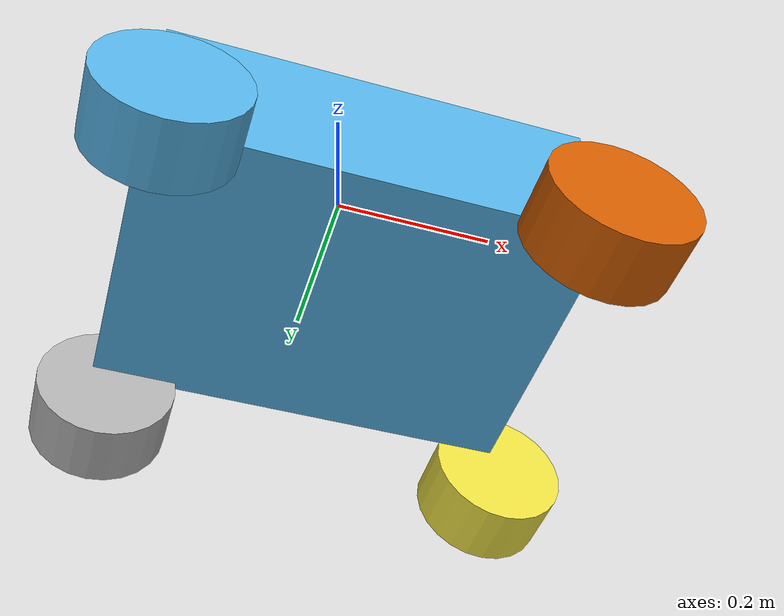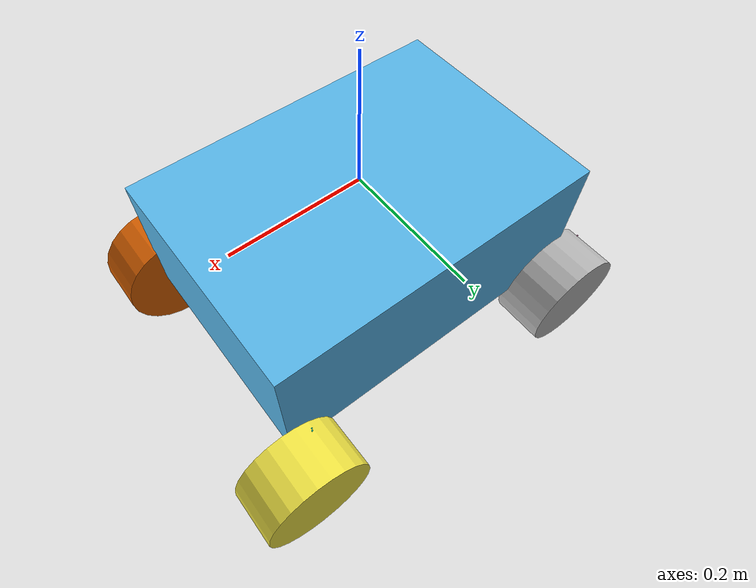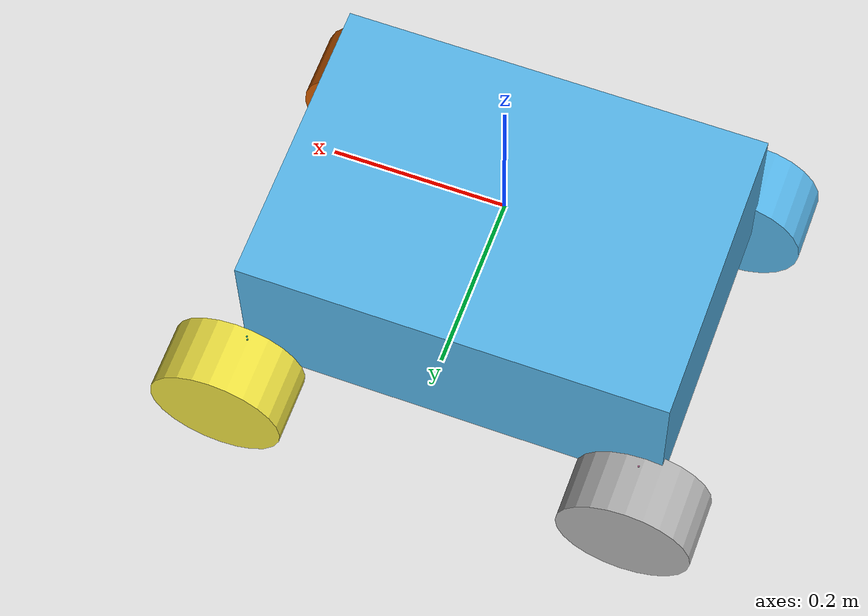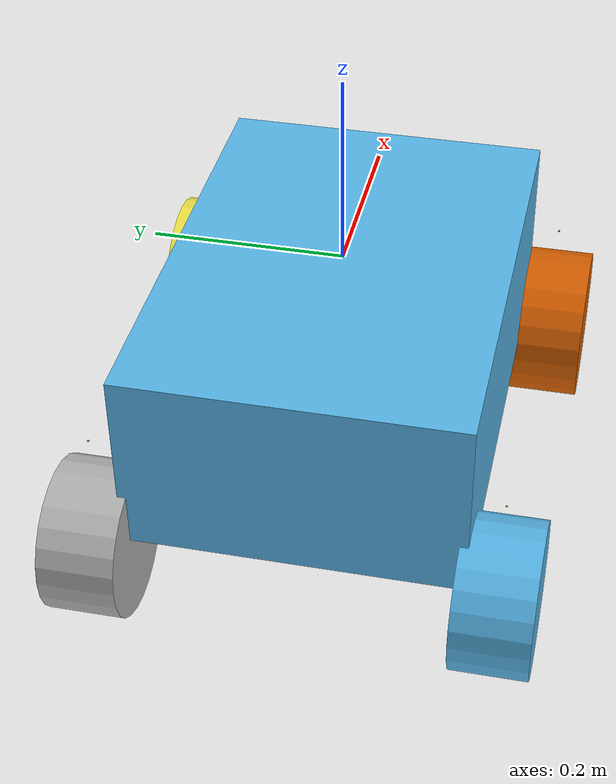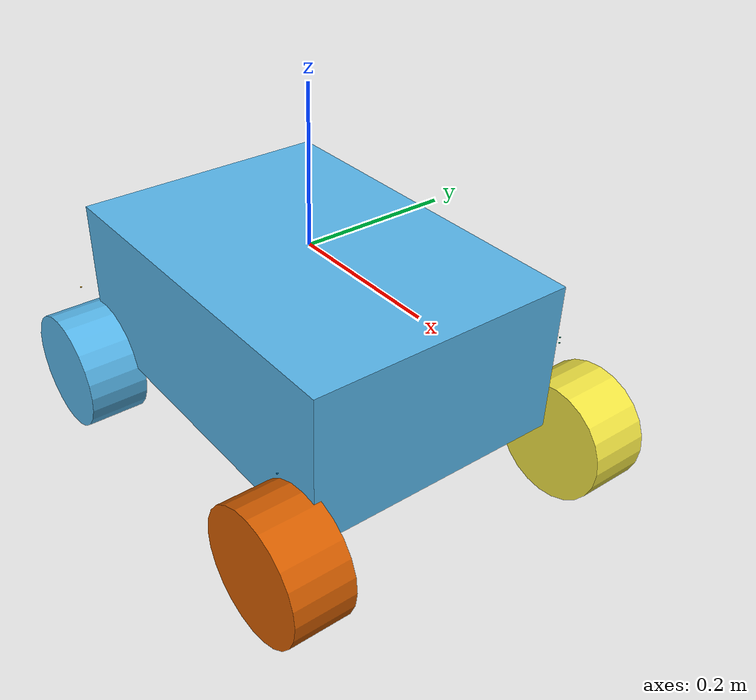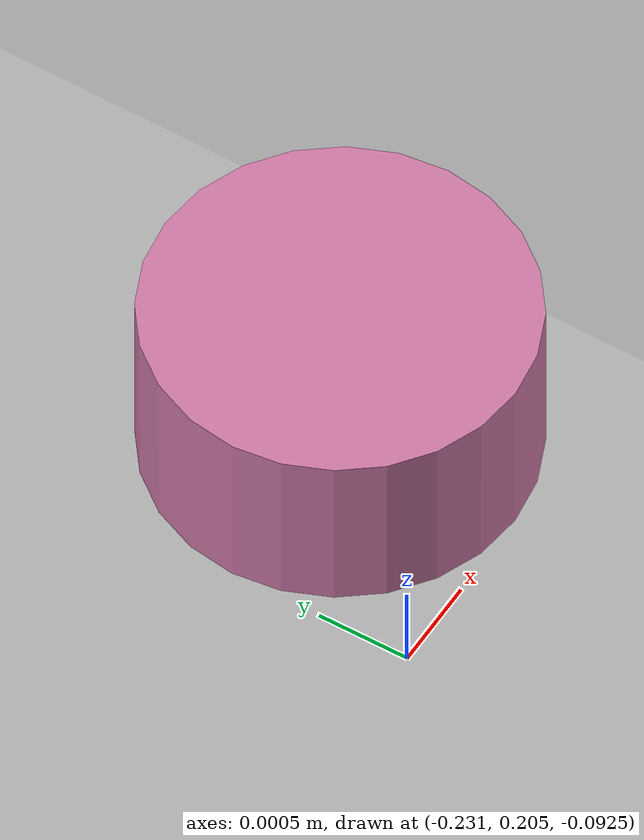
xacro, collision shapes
<?xml version="1.0"?>

<robot name="ranger_mini_v2" xmlns:xacro="http://ros.org/wiki/xacro">

    <!-- Variables -->
    <xacro:property name="M_PI" value="3.14159"/>

    <!-- Vehicle Geometries -->
    <xacro:property name="base_x_size" value="1.0" />
    <xacro:property name="base_y_size" value="0.380000" />
    <xacro:property name="base_z_size" value="0.210000" />

    <xacro:property name="wheelbase" value="0.498" />
    <xacro:property name="track" value="0.58306" />
    <xacro:property name="wheel_vertical_offset" value="-0.0702" />

    <xacro:property name="wheel_length" value="1.1653e-01" />
    <xacro:property name="wheel_radius" value="1.6459e-01" />

    <!-- Base -->
    <link name="base_footprint"/>
    <joint name="base_link_joint" type="fixed">
        <origin xyz="0 0 0"/>
        <parent link="base_footprint"/>
        <child link="base_link"/>
    </joint>

    <!-- Base link -->
    <link name="base_link">
        <inertial>
            <origin xyz="0.0 0.0 0.0"/>
            <mass value="10"/>
            <inertia ixx="1" ixy="0.0" ixz="0.0" iyy="1" iyz="0.0" izz="1"/>
        </inertial>
        <visual>
            <origin xyz="0 0 0" rpy="1.57 0 3.14 " />
            <geometry>
                <mesh filename="file://$(find ranger_mini_v2)/meshes/ranger_base.dae" />
            </geometry>
        </visual>
        <collision>
            <origin xyz="0 0 -0.1" rpy="0 0 0" />
            <geometry>
                <box size="0.5 0.35 0.2"/>
            </geometry>
        </collision>

    </link>

   <link name="fl_steering_wheel_link">
        <inertial>
            <origin xyz="0.0 0.0 0.0"/>
            <mass value="1"/>
            <inertia ixx="0.01" ixy="0.0" ixz="0.0" iyy="0.01" iyz="0.0" izz="0.01"/>
        </inertial>
        <visual>
            <origin xyz="-0.23 -0.194 0.1" rpy="1.57 0 3.14 " />
            <geometry>
                    <mesh filename="file://$(find ranger_mini_v2)/meshes/fl.dae" />
            </geometry>
        </visual>
        <collision>
            <origin xyz="0 0 0.008" rpy="0 0 0" />
            <geometry>
                <cylinder radius="0.001" length="0.001"/>
            </geometry>
        </collision>
        <collision>
            <origin xyz="0 0 0" rpy="0 0 0" />
            <geometry>
                <cylinder radius="0.001" length="0.001"/>
            </geometry>
        </collision>
    </link>
    <joint name="fl_steering_wheel" type="revolute">
        <origin xyz="0.23 0.206 -0.1" rpy="0 0 0" />
        <parent link="base_link"/>
        <child link="fl_steering_wheel_link"/>
        <axis xyz="0 0 1" rpy="0 0 0" />
        <limit effort="5" velocity="6.28"  lower="-2.1" upper="2.1" />
    </joint>

        <link name="fl_wheel_link">
            <inertial>
                <mass value="8" />
                <origin xyz="0 0 0" />
                <inertia ixx="0.1171" ixy="0" ixz="0" iyy="0.1361" iyz="0" izz="0.1171" />
            </inertial>
            <visual>
                <origin xyz="0 0 0" rpy="1.57 0 0" />
                <geometry>
                    <cylinder length="0.01" radius="0.01" />
                </geometry>
            </visual>
            <collision>
                <origin xyz="0 0 0" rpy="1.57 0 0" />
                <geometry>
                    <cylinder length="0.08" radius="0.08" />
                </geometry>
                     <contact>
                         <ode>
                        <min_depth>0.001</min_depth>
                         </ode>
                    </contact>
            </collision>
        </link>

        <joint name="fl_wheel" type="continuous">
            <origin xyz="0.03 0.01 -0.12" rpy="0 0 0" />
            <parent link="fl_steering_wheel_link"/>
            <child link="fl_wheel_link"/>
            <axis xyz="0 1 0" rpy="0 0 0" />
        </joint>

   <link name="fr_steering_wheel_link">
        <inertial>
            <origin xyz="0.0 0.0 0.0" rpy="0.0 0.0 0.0"/>
            <mass value="1"/>
            <inertia ixx="0.01" ixy="0.0" ixz="0.0" iyy="0.01" iyz="0.0" izz="0.01"/>
        </inertial>
        <visual>
            <origin xyz="-0.23 0.194 0.1" rpy="1.57 0 3.14 " />
            <geometry>
                <mesh filename="file://$(find ranger_mini_v2)/meshes/fr.dae" />
            </geometry>
        </visual>
        <collision>
            <origin xyz="0 0 0.008" rpy="0 0 0" />
            <geometry>
                <cylinder radius="0.001" length="0.001"/>
            </geometry>
        </collision>
    </link>
    <joint name="fr_steering_wheel" type="revolute">
        <origin xyz="0.23 -0.206 -0.1" rpy="0 0 0" />
        <parent link="base_link"/>
        <child link="fr_steering_wheel_link"/>
        <axis xyz="0 0 1" rpy="0 0 0" />
        <limit effort="5" velocity="6.28"  lower="-2.1" upper="2.1" />
    </joint>

        <link name="fr_wheel_link">
            <inertial>
                <mass value="8" />
                <origin xyz="0 0 0" />
                <inertia ixx="0.1171" ixy="0" ixz="0" iyy="0.1361" iyz="0" izz="0.1171" />
            </inertial>
            <visual>
                <origin xyz="0 0 0" rpy="1.57 0 0" />
                <geometry>
                    <cylinder length="0.01" radius="0.01" />
                </geometry>
            </visual>
            <collision>
                <origin xyz="0 0 0" rpy="1.57 0 0" />
                <geometry>
                    <cylinder length="0.08" radius="0.085" />
                </geometry>
                     <contact>
                         <ode>
                        <min_depth>0.001</min_depth>
                         </ode>
                    </contact>
            </collision>
        </link>

        <joint name="fr_wheel" type="continuous">
            <origin xyz="0.0 0.0 -0.12" rpy="0 0 0" />
            <parent link="fr_steering_wheel_link"/>
            <child link="fr_wheel_link"/>
            <axis xyz="0 1 0" rpy="0 0 0" />
        </joint>

   <link name="rl_steering_wheel_link">
        <inertial>
            <origin xyz="0.0 0.0 0.0" rpy="0.0 0.0 0.0"/>
            <mass value="1"/>
            <inertia ixx="0.01" ixy="0.0" ixz="0.0" iyy="0.01" iyz="0.0" izz="0.01"/>
        </inertial>
        <visual>
            <origin xyz="-0.23 -0.194 0.1" rpy="1.57 0 3.14 " />
            <geometry>
                    <mesh filename="file://$(find ranger_mini_v2)/meshes/fl.dae" />
            </geometry>
        </visual>
        <collision>
            <origin xyz="0 0 0.008" rpy="0 0 0" />
            <geometry>
                <cylinder radius="0.001" length="0.001"/>
            </geometry>
        </collision>
    </link>
    <joint name="rl_steering_wheel" type="revolute">
        <origin xyz="-0.23 0.206 -0.1" rpy="0 0 0" />
        <parent link="base_link"/>
        <child link="rl_steering_wheel_link"/>
        <axis xyz="0 0 1" rpy="0 0 0" />
        <limit effort="5" velocity="6.28"  lower="-2.1" upper="2.1" />
    </joint>

        <link name="rl_wheel_link">
            <inertial>
                <mass value="8" />
                <origin xyz="0 0 0" />
                <inertia ixx="0.1171" ixy="0" ixz="0" iyy="0.1361" iyz="0" izz="0.1171" />
            </inertial>
            <visual>
                <origin xyz="0 0 0" rpy="1.57 0 0" />
                <geometry>
                    <cylinder length="0.01" radius="0.01" />
                </geometry>
            </visual>
            <collision>
                <origin xyz="0 0 0" rpy="1.57 0 0" />
                <geometry>
                    <cylinder length="0.08" radius="0.08" />
                </geometry>
                     <contact>
                         <ode>
                        <min_depth>0.001</min_depth>
                         </ode>
                    </contact>
            </collision>
        </link>

        <joint name="rl_wheel" type="continuous">
            <origin xyz="0.0 0.0 -0.12 " rpy="0 0 0" />
            <parent link="rl_steering_wheel_link"/>
            <child link="rl_wheel_link"/>
            <axis xyz="0 1 0" rpy="0 0 0" />
        </joint>

   <link name="rr_steering_wheel_link">
        <inertial>
            <origin xyz="0.0 0.0 0.0"/>
            <mass value="1"/>
            <inertia ixx="0.01" ixy="0.0" ixz="0.0" iyy="0.01" iyz="0.0" izz="0.01"/>
        </inertial>
        <visual>
            <origin xyz="-0.23 0.194 0.1" rpy="1.57 0 3.14 " />
            <geometry>
                    <mesh filename="file://$(find ranger_mini_v2)/meshes/fr.dae" />
            </geometry>
        </visual>
        <collision>
            <origin xyz="0 0 0" rpy="0 0 0" />
            <geometry>
                <cylinder radius="0.001" length="0.001"/>
            </geometry>
        </collision>
    </link>
    <joint name="rr_steering_wheel" type="revolute">
        <origin xyz="-0.23 -0.206 -0.1" rpy="0 0 0" />
        <parent link="base_link"/>
        <child link="rr_steering_wheel_link"/>
        <axis xyz="0 0 1" rpy="0 0 0" />
        <limit effort="5" velocity="6.28"  lower="-2.1" upper="2.1" />
    </joint>

        <link name="rr_wheel_link">
            <inertial>
                <mass value="8" />
                <origin xyz="0 0 0" />
                <inertia ixx="0.1171" ixy="0" ixz="0" iyy="0.1361" iyz="0" izz="0.1171" />
            </inertial>
            <visual>
                <origin xyz="0.0 0.0 0.0" rpy="1.57 0 0" />
                <geometry>
                    <cylinder length="0.01" radius="0.01" />
                </geometry>
            </visual>
            <collision>
                <origin xyz="0 0 0" rpy="1.57 0 0" />
                <geometry>
                    <cylinder length="0.08" radius="0.08" />
                </geometry>
                     <contact>
                         <ode>
                        <min_depth>0.001</min_depth>
                         </ode>
                    </contact>
            </collision>
        </link>

        <joint name="rr_wheel" type="continuous">
            <origin xyz="0.0 0.0 -0.12 " rpy="0 0 0" />
            <parent link="rr_steering_wheel_link"/>
            <child link="rr_wheel_link"/>
            <axis xyz="0 1 0" rpy="0 0 0" />
        </joint>

    <ros2_control name="four_wheel_steering_ros2_control" type="system">
        <hardware>
            <plugin>bdrive_hardware_interface/BDriveHardwareInterface</plugin>
        </hardware>

        <joint name="fl_wheel">
            <param name="node_id">-1</param>
            <command_interface name="velocity">
            <param name="min">-3.14</param>
            <param name="max">3.14</param>
            </command_interface>
            <state_interface name="velocity"/>
            <state_interface name="effort"/>
        </joint>

        <joint name="fr_wheel">
            <param name="node_id">6</param>
            <command_interface name="velocity">
            <param name="min">-3.14</param>
            <param name="max">3.14</param>
            </command_interface>
            <state_interface name="velocity"/>
            <state_interface name="effort"/>
        </joint>

        <joint name="rl_wheel">
            <param name="node_id">5</param>
            <command_interface name="velocity">
            <param name="min">-3.14</param>
            <param name="max">3.14</param>
            </command_interface>
            <state_interface name="velocity"/>
            <state_interface name="effort"/>
        </joint>

        <joint name="rr_wheel">
            <param name="node_id">-1</param>
            <command_interface name="velocity">
            <param name="min">-3.14</param>
            <param name="max">3.14</param>
            </command_interface>
            <state_interface name="velocity"/>
            <state_interface name="effort"/>
        </joint>

        <joint name="fl_steering_wheel">
            <param name="node_id">1</param>
            <command_interface name="position">
            <param name="min">-3.14</param>
            <param name="max">3.14</param>
            </command_interface>
            <state_interface name="position">
            <param name="initial_value">0</param>
            </state_interface>
            <state_interface name="velocity"/>
            <state_interface name="effort"/>
        </joint>

        <joint name="fr_steering_wheel">
            <param name="node_id">4</param>
            <command_interface name="position">
            <param name="min">-3.14</param>
            <param name="max">3.14</param>
            </command_interface>
            <state_interface name="position">
            <param name="initial_value">0</param>
            </state_interface>
            <state_interface name="velocity"/>
            <state_interface name="effort"/>
        </joint>

        <joint name="rl_steering_wheel">
            <param name="node_id">2</param>
            <command_interface name="position">
            <param name="min">-3.14</param>
            <param name="max">3.14</param>
            </command_interface>
            <state_interface name="position">
            <param name="initial_value">0</param>
            </state_interface>
            <state_interface name="velocity"/>
            <state_interface name="effort"/>
        </joint>

        <joint name="rr_steering_wheel">
            <param name="node_id">3</param>
            <command_interface name="position">
            <param name="min">-3.14</param>
            <param name="max">3.14</param>
            </command_interface>
            <state_interface name="position">
            <param name="initial_value">0</param>
            </state_interface>
            <state_interface name="velocity"/>
            <state_interface name="effort"/>
        </joint>

    </ros2_control>

</robot>
